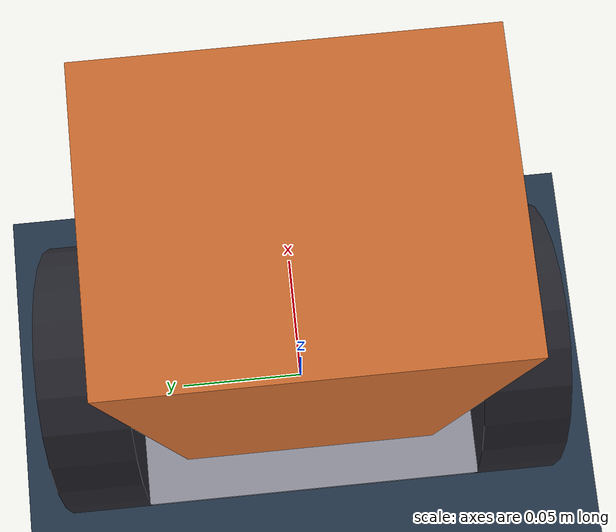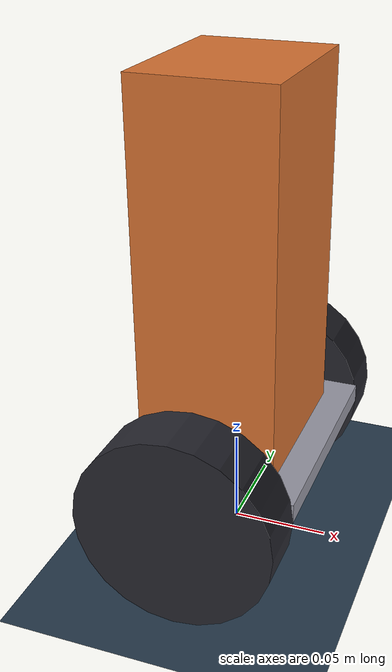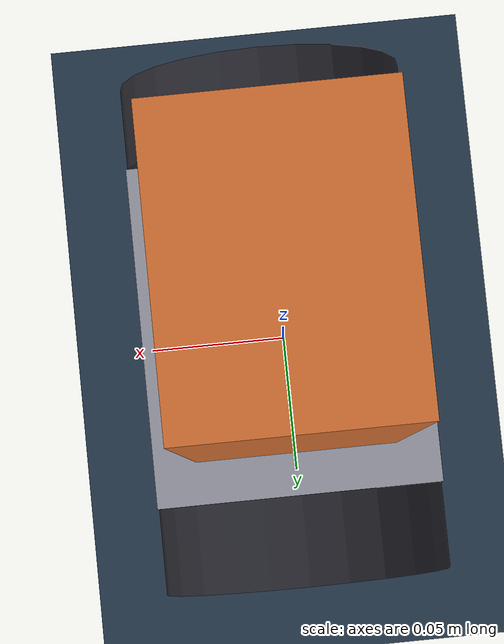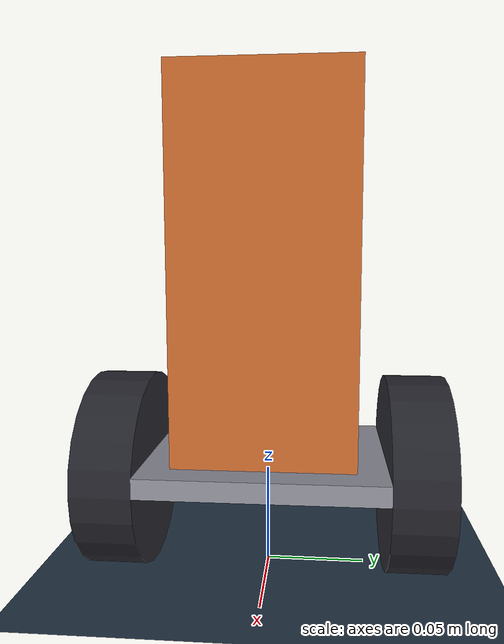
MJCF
<mujoco model="balancer">
  <compiler angle="radian" autolimits="true"/>
  <option timestep="0.002" integrator="implicitfast"/>

  <default>
    <default class="wheel">
      <joint type="hinge" axis="0 1 0" damping="0.0005" armature="0.0005"/>
      <geom type="cylinder" size="0.05 0.015" zaxis="0 1 0" mass="0.1"
            condim="3" friction="1.5 0.005 0.0001" rgba="0.15 0.15 0.18 1"/>
    </default>
  </default>

  <asset>
    <texture name="grid" type="2d" builtin="checker" width="512" height="512"
             rgb1=".2 .3 .4" rgb2=".1 .15 .2"/>
    <material name="grid" texture="grid" texrepeat="8 8" reflectance=".1"/>
  </asset>

  <worldbody>
    <light pos="0 0 2.5" dir="0 0 -1" diffuse=".8 .8 .8"/>
    <geom name="floor" type="plane" size="10 10 0.05" material="grid"
          condim="3" friction="1.5 0.005 0.0001"/>

    <body name="chassis" pos="0 0 0.05">
      <freejoint name="root"/>
      <!-- mass held high: that is what makes it an inverted pendulum -->
      <geom name="body" type="box" pos="0 0 0.10" size="0.035 0.045 0.10" mass="0.8"
            rgba="0.85 0.45 0.2 1"/>
      <geom name="deck" type="box" pos="0 0 0.005" size="0.05 0.06 0.005" mass="0.1"
            rgba="0.6 0.6 0.65 1"/>
      <site name="imu" pos="0 0 0.10" size="0.008" rgba="0 1 0 1"/>

      <body name="wheel_left" pos="0 0.075 0">
        <joint name="wheel_left" class="wheel"/>
        <geom name="wheel_left" class="wheel"/>
      </body>
      <body name="wheel_right" pos="0 -0.075 0">
        <joint name="wheel_right" class="wheel"/>
        <geom name="wheel_right" class="wheel"/>
      </body>
    </body>
  </worldbody>

  <actuator>
    <motor name="wheel_left"  joint="wheel_left"  ctrlrange="-1 1" gear="1"/>
    <motor name="wheel_right" joint="wheel_right" ctrlrange="-1 1" gear="1"/>
  </actuator>

  <sensor>
    <gyro          name="gyro"    site="imu"/>
    <accelerometer name="accel"   site="imu"/>
    <framequat     name="orient"  objtype="site" objname="imu"/>
    <jointvel      name="vel_left"  joint="wheel_left"/>
    <jointvel      name="vel_right" joint="wheel_right"/>
  </sensor>

  <keyframe>
    <!-- start tipped 5 degrees forward: qpos = xyz + quat(w,x,y,z) + 2 wheel angles -->
    <key name="tipped" qpos="0 0 0.05 0.99904 0 0.04362 0 0 0"/>
  </keyframe>
</mujoco>
